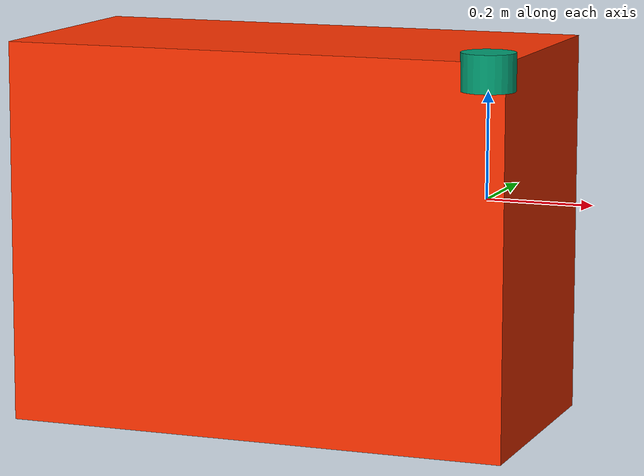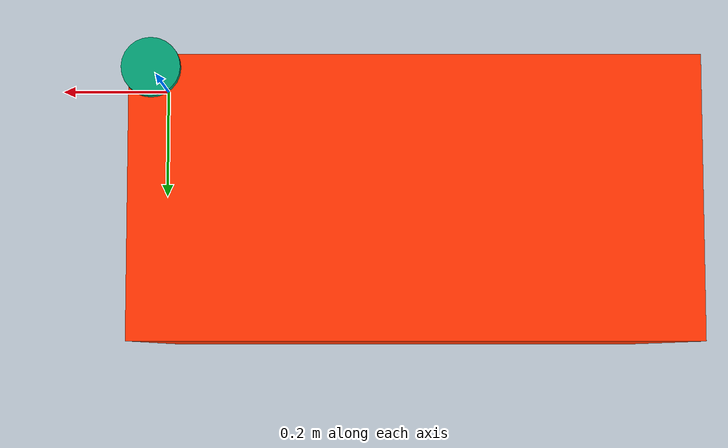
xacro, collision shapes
<?xml version="1.0"?>
<robot name="roboat" xmlns:xacro="http://www.ros.org/wiki/xacro">
  <xacro:arg name="gpu" default="false"/>
  <xacro:property name="gpu" value="$(arg gpu)" />

  <material name="orange">
    <color rgba="1 0.2 0 1"/>
  </material>

  <!-- Base Footprint -->
  <link name="base_footprint" />

  <!-- Base Link -->
  <joint name="footprint" type="fixed" >
   <parent link="base_footprint" />
    <child link="base_link" />
    <origin xyz="0 0 0" rpy="0 0 0" />
  </joint>

  <link name="base_link">
    <visual>
      <origin rpy="1.57 0 0" xyz="-0.46 0.225 -0.12"/>
      <geometry>
        <mesh filename="package://gazebo_sim/meshes/roboat.STL" scale="0.001 0.001 0.001"/>
      </geometry>
      <material name="orange"/>
    </visual>

    <collision>
      <origin rpy="1.57 0 0" xyz="-0.46 0.225 -0.12"/>
      <geometry>
        <box size="1 0.75 0.5"/>
      </geometry>
    </collision>

    <inertial>
      <origin rpy="1.57 0 0" xyz="-0.46 0.225 -0.12"/>
      <mass value="10"/>
      <inertia
        ixx="1.0" ixy="0.0" ixz="0.0"
        iyy="1.0" iyz="0.0"
        izz="4.1"/>
    </inertial>
  </link>

  <xacro:include filename="$(find velodyne_description)/urdf/VLP-16.urdf.xacro"/>
  <xacro:VLP-16 parent="base_link" name="velodyne" topic="/points_raw" organize_cloud="false" hz="10" samples="360" gpu="true">
    <origin xyz="0 0 0.2" rpy="0 0 0" />
  </xacro:VLP-16>

  <gazebo reference="base_link">
    <turnGravityOff>1</turnGravityOff>
    <material>Gazebo/Orange</material>
  </gazebo>

</robot>

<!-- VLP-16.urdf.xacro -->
<robot xmlns:xacro="http://www.ros.org/wiki/xacro" name="VLP-16">
  <xacro:property name="M_PI" value="3.1415926535897931" />
  <xacro:macro name="VLP-16" params="*origin is_sim:=true parent:=base_link name:=velodyne tf_prefix:='' topic:=/velodyne_points organize_cloud:=false hz:=10 lasers:=16 samples:=1875 collision_range:=0.3 min_range:=0.0 max_range:=100.0 noise:=0.008 min_angle:=-${M_PI} max_angle:=${M_PI} gpu:=false">

    <joint name="${name}_base_mount_joint" type="fixed">
      <xacro:insert_block name="origin" />
      <parent link="${parent}"/>
      <child link="${name}_base_link"/>
    </joint>

    <link name="${name}_base_link">
      <inertial>
        <mass value="0.83"/>
        <origin xyz="0 0 0.03585"/>
        <inertia ixx="${(0.83 * (3.0*0.0516*0.0516 + 0.0717*0.0717)) / 12.0}" ixy="0" ixz="0"
          iyy="${(0.83 * (3.0*0.0516*0.0516 + 0.0717*0.0717)) / 12.0}" iyz="0"
          izz="${0.5 * 0.83 * (0.0516*0.0516)}"/>
      </inertial>
      <visual>
        <geometry>
          <mesh filename="package://velodyne_description/meshes/VLP16_base_1.dae" />
        </geometry>
      </visual>
      <visual>
        <geometry>
          <mesh filename="package://velodyne_description/meshes/VLP16_base_2.dae" />
        </geometry>
      </visual>
      <collision>
        <origin rpy="0 0 0" xyz="0 0 0.03585"/>
        <geometry>
          <cylinder radius="0.0516" length="0.0717"/>
        </geometry>
      </collision>
    </link>

    <joint name="${name}_base_scan_joint" type="fixed" >
      <origin xyz="0 0 0.0377" rpy="0 0 0" />
      <parent link="${name}_base_link" />
      <child link="${name}"/>
    </joint>

    <link name="${name}">
      <inertial>
        <mass value="0.01"/>
        <origin xyz="0 0 0"/>
        <inertia ixx="1e-7" ixy="0" ixz="0" iyy="1e-7" iyz="0" izz="1e-7"/>
      </inertial>
      <visual>
        <origin xyz="0 0 -0.0377" />
        <geometry>
          <mesh filename="package://velodyne_description/meshes/VLP16_scan.dae" />
        </geometry>
      </visual>
      <collision>
        <geometry>
          <sphere radius="0"/>
        </geometry>
      </collision>
    </link>

    <!-- Gazebo requires the velodyne_gazebo_plugins package -->
    <xacro:if value="${is_sim}">
        <gazebo reference="${name}">
            <xacro:if value="${gpu}">
                <sensor type="gpu_ray" name="${name}-VLP16">
                <pose>0 0 0 0 0 0</pose>
                <visualize>false</visualize>
                <update_rate>${hz}</update_rate>
                <ray>
                    <scan>
                    <horizontal>
                        <samples>${samples}</samples>
                        <resolution>1</resolution>
                        <min_angle>${min_angle}</min_angle>
                        <max_angle>${max_angle}</max_angle>
                    </horizontal>
                    <vertical>
                        <samples>${lasers}</samples>
                        <resolution>1</resolution>
                        <min_angle>-${15.0*M_PI/180.0}</min_angle>
                        <max_angle> ${15.0*M_PI/180.0}</max_angle>
                    </vertical>
                    </scan>
                    <range>
                    <min>${collision_range}</min>
                    <max>${max_range+1}</max>
                    <resolution>0.001</resolution>
                    </range>
                    <noise>
                    <type>gaussian</type>
                    <mean>0.0</mean>
                    <stddev>0.0</stddev>
                    </noise>
                </ray>
                <plugin name="gazebo_ros_laser_controller" filename="libgazebo_ros_velodyne_laser.so">
                    <ros>
                    <namespace>/${name}</namespace>
                    <remapping>~/out:=${topic}</remapping>
                    </ros>
                    <tf_prefix>${tf_prefix}</tf_prefix>
                    <frame_name>${name}</frame_name>
                    <organize_cloud>${organize_cloud}</organize_cloud>
                    <min_range>${min_range}</min_range>
                    <max_range>${max_range}</max_range>
                    <gaussian_noise>${noise}</gaussian_noise>
                </plugin>
                </sensor>
            </xacro:if>
            <xacro:unless value="${gpu}">
                <sensor type="ray" name="${name}-VLP16">
                <pose>0 0 0 0 0 0</pose>
                <visualize>false</visualize>
                <update_rate>${hz}</update_rate>
                <ray>
                    <scan>
                    <horizontal>
                        <samples>${samples}</samples>
                        <resolution>1</resolution>
                        <min_angle>${min_angle}</min_angle>
                        <max_angle>${max_angle}</max_angle>
                    </horizontal>
                    <vertical>
                        <samples>${lasers}</samples>
                        <resolution>1</resolution>
                        <min_angle>-${15.0*M_PI/180.0}</min_angle>
                        <max_angle> ${15.0*M_PI/180.0}</max_angle>
                    </vertical>
                    </scan>
                    <range>
                    <min>${collision_range}</min>
                    <max>${max_range+1}</max>
                    <resolution>0.001</resolution>
                    </range>
                    <noise>
                    <type>gaussian</type>
                    <mean>0.0</mean>
                    <stddev>0.0</stddev>
                    </noise>
                </ray>
                <plugin name="gazebo_ros_laser_controller" filename="libgazebo_ros_velodyne_laser.so">
                    <ros>
                    <namespace>/${name}</namespace>
                    <remapping>~/out:=${topic}</remapping>
                    </ros>
                    <tf_prefix>${tf_prefix}</tf_prefix>
                    <frame_name>${name}</frame_name>
                    <organize_cloud>${organize_cloud}</organize_cloud>
                    <min_range>${min_range}</min_range>
                    <max_range>${max_range}</max_range>
                    <gaussian_noise>${noise}</gaussian_noise>
                </plugin>
                </sensor>
            </xacro:unless>
        </gazebo>
    </xacro:if>

  </xacro:macro>
</robot>
